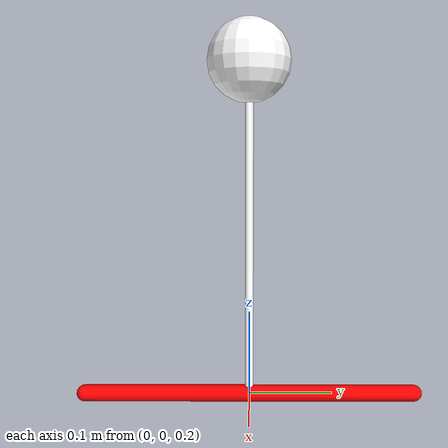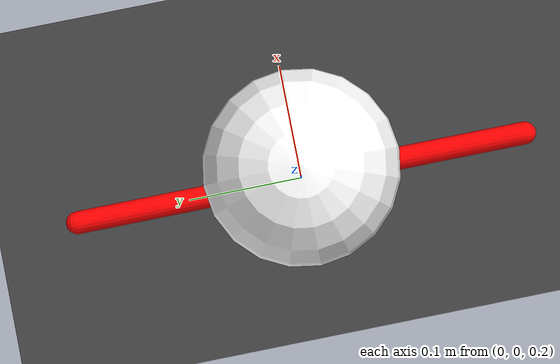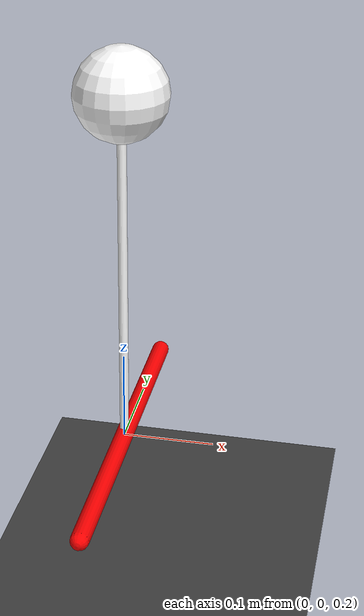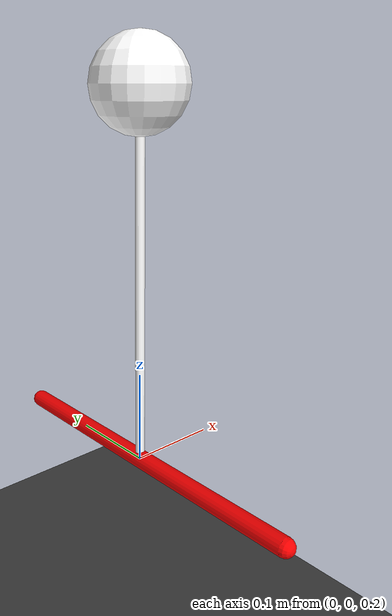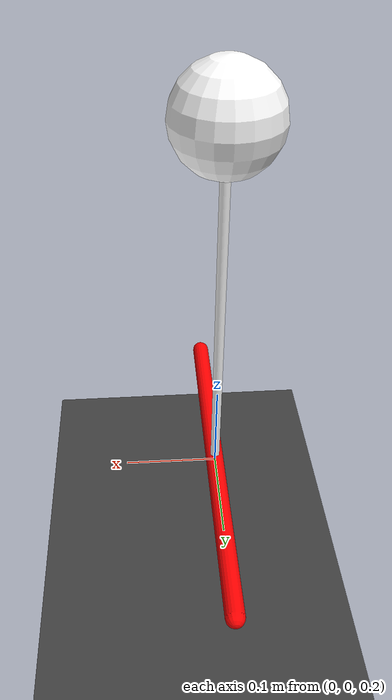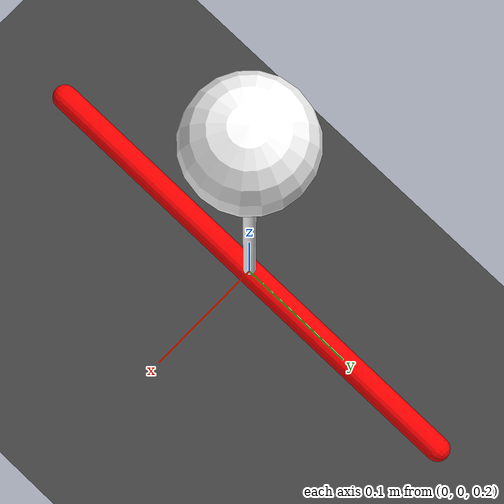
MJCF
<mujoco model="inverted pendulum">
    <compiler angle="radian"/>
    <option gravity='0 0 -9.806' timestep="0.0005" iterations="50">
        <flag sensornoise="enable"/>
    </option>
    <asset>
        <texture type='skybox' builtin='gradient' width='128' height='128' rgb1='0.4 0.6 0.8' rgb2='0 0 0'/>
        <texture name='plane' type='2d' builtin='checker' rgb1='0.2 0.2 0.2' rgb2='0.3 0.3 0.3' width='512' height='512'/>
        <material name='plane' reflectance='0.0' texture='plane' texrepeat='1 1' texuniform='true'/>
    </asset>

    <worldbody>
        <light directional="true" cutoff="4" exponent="20" diffuse="1 1 1" specular="0 0 0" pos=".9 .3 2.5" dir="-.9 -.3 -2.5 "/>
        <geom name='floor' type='plane' conaffinity='15' condim='3' material='plane' pos='0 0 0' size='1 1 0.125'/>
        <body name="beambody" pos="0 0 .2">
            <geom name="base" pos="0 0 0" type="capsule" size=".01 .2" rgba='1 0 0 1' euler="1.57 0 0" mass='0.001'/>
            <joint name="pivot" pos="0 0 0" axis="0 1 0" limited="false" damping=".05"/>
            <body name="rodbody" pos="0 0 0">
                <geom name="rodgeom" type="cylinder" rgba='1 1 1 1' pos="0 0 0.2" size=".005 .2" mass="0.001"/>
                <body name="ballbody" pos="0 0 0.4">
                    <geom name="ballgeom" type="sphere" rgba='1 1 1 1' pos="0 0 0" size=".05" mass="10"/>
                    <site name='ballsite' pos='0 0 0' size='0.01'/>
                </body>
            </body>
        </body>
    </worldbody>

    <actuator>
        <motor joint='pivot' name='motor' gear="1" forcelimited="true" forcerange="-10 10"/>
    </actuator>

    <sensor>
        <jointpos name="encoder" joint="pivot"/>
    </sensor>

</mujoco>
